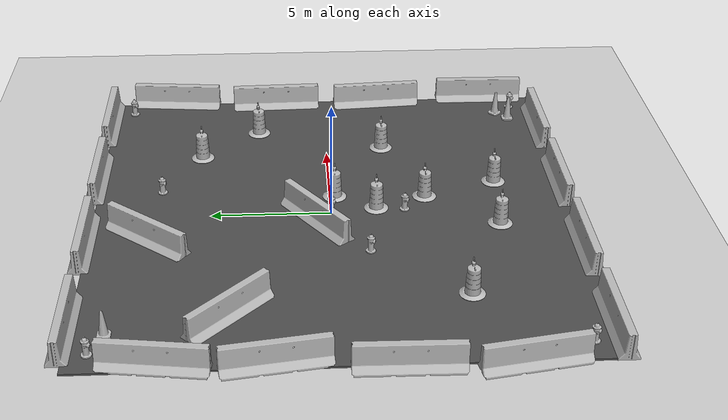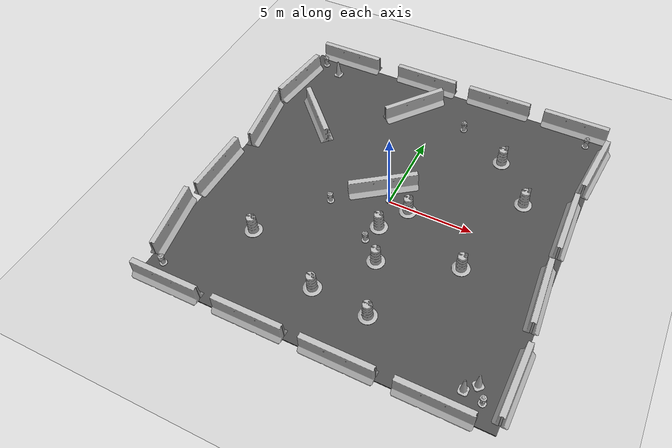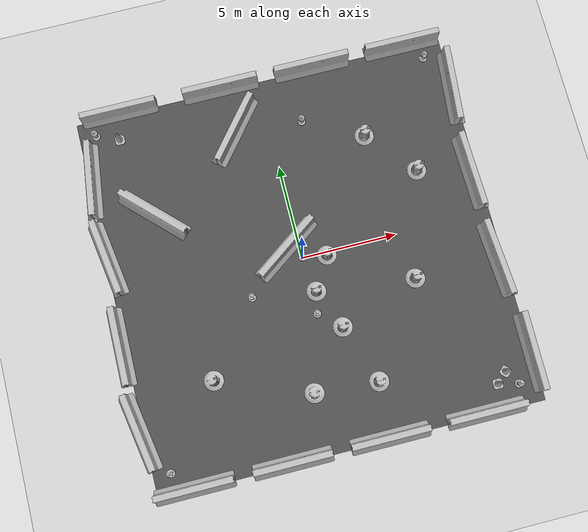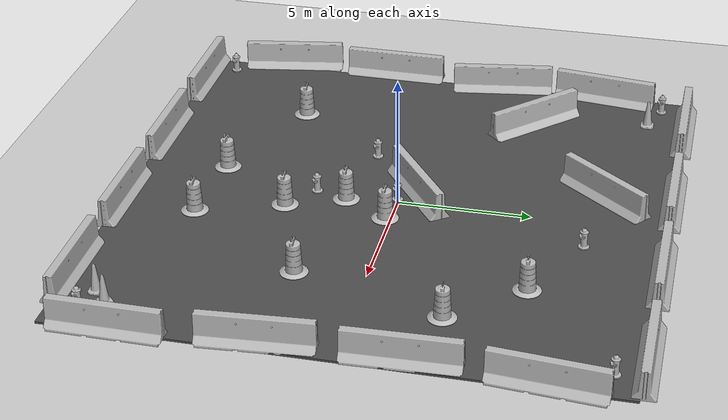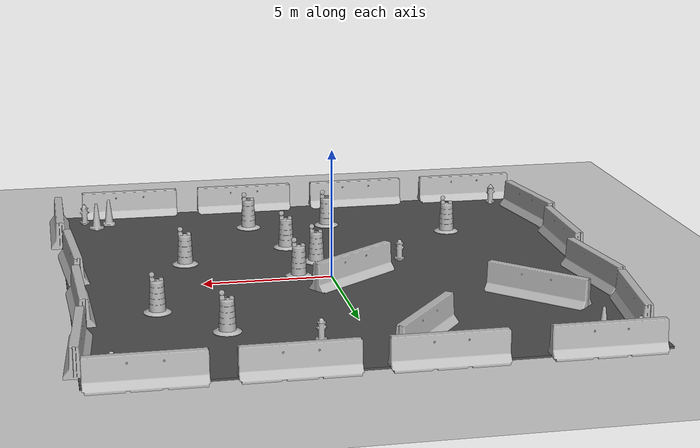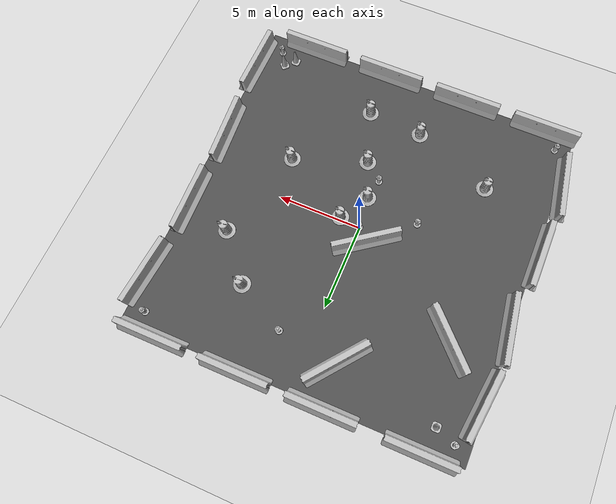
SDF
<sdf version="1.7">
 <world name="default">
  <light name="sun" type="directional">
   <pose>0 0 10 0 -0 0</pose>
   <diffuse>0.8 0.8 0.8 1</diffuse>
   <specular>0.2 0.2 0.2 1</specular>
   <attenuation>
    <range>1000</range>
    <constant>0.9</constant>
    <linear>0.01</linear>
    <quadratic>0.001</quadratic>
   </attenuation>
   <direction>-0.5 0.1 -0.9</direction>
   <spot><inner_angle>0</inner_angle><outer_angle>0</outer_angle><falloff>0</falloff></spot>
  </light>
  <model name="ground_plane">
   <static>1</static>
   <link name="link">
    <collision name="collision">
     <geometry><plane><normal>0 0 1</normal><size>100 100</size></plane></geometry>
     <surface><friction><ode><mu>100</mu><mu2>50</mu2></ode></friction></surface>
    </collision>
    <visual name="visual">
     <cast_shadows>0</cast_shadows>
     <geometry><plane><normal>0 0 1</normal><size>100 100</size></plane></geometry>
     <material>
      <script><uri>file://media/materials/scripts/gazebo.material</uri><name>Gazebo/Grey</name></script>
     </material>
    </visual>
    <velocity_decay><linear>0</linear><angular>0</angular></velocity_decay>
   </link>
  </model>
  <physics type="ode">
   <max_step_size>0.01</max_step_size>
   <real_time_factor>1</real_time_factor>
   <real_time_update_rate>100</real_time_update_rate>
  </physics>
  <scene><ambient>0.4 0.4 0.4 1</ambient><background>0.7 0.7 0.7 1</background><shadows>1</shadows></scene>
  <model name="jersey_barrier">
   <static>1</static>
   <link name="link">
    <visual name="visual">
     <geometry><mesh><uri>model://jersey_barrier/meshes/jersey_barrier.dae</uri></mesh></geometry>
    </visual>
    <collision name="upright">
     <pose>0 0 0.5715 0 -0 0</pose>
     <geometry><box><size>4.06542 0.3063 1.143</size></box></geometry>
    </collision>
    <collision name="base">
     <pose>0 0 0.032258 0 -0 0</pose>
     <geometry><box><size>4.06542 0.8107 0.064516</size></box></geometry>
    </collision>
    <collision name="base2">
     <pose>0 0 0.1 0 -0 0</pose>
     <geometry><box><size>4.06542 0.65 0.1</size></box></geometry>
    </collision>
    <collision name="base3">
     <pose>0 0 0.2 0 -0 0</pose>
     <geometry><box><size>4.06542 0.5 0.1</size></box></geometry>
    </collision>
    <collision name="left-angle">
     <pose>0 -0.224 0.2401 0.9 -0 0</pose>
     <geometry><box><size>4.06542 0.5 0.064516</size></box></geometry>
    </collision>
    <collision name="right-angle">
     <pose>0 0.224 0.2401 -0.9 0 0</pose>
     <geometry><box><size>4.06542 0.5 0.064516</size></box></geometry>
    </collision>
    <velocity_decay><linear>0</linear><angular>0</angular></velocity_decay>
   </link>
   <pose>-8 -10 0 0 -0 0</pose>
  </model>
  <model name="jersey_barrier_0">
   <static>1</static>
   <link name="link">
    <visual name="visual">
     <geometry><mesh><uri>model://jersey_barrier/meshes/jersey_barrier.dae</uri></mesh></geometry>
    </visual>
    <collision name="upright">
     <pose>0 0 0.5715 0 -0 0</pose>
     <geometry><box><size>4.06542 0.3063 1.143</size></box></geometry>
    </collision>
    <collision name="base">
     <pose>0 0 0.032258 0 -0 0</pose>
     <geometry><box><size>4.06542 0.8107 0.064516</size></box></geometry>
    </collision>
    <collision name="base2">
     <pose>0 0 0.1 0 -0 0</pose>
     <geometry><box><size>4.06542 0.65 0.1</size></box></geometry>
    </collision>
    <collision name="base3">
     <pose>0 0 0.2 0 -0 0</pose>
     <geometry><box><size>4.06542 0.5 0.1</size></box></geometry>
    </collision>
    <collision name="left-angle">
     <pose>0 -0.224 0.2401 0.9 -0 0</pose>
     <geometry><box><size>4.06542 0.5 0.064516</size></box></geometry>
    </collision>
    <collision name="right-angle">
     <pose>0 0.224 0.2401 -0.9 0 0</pose>
     <geometry><box><size>4.06542 0.5 0.064516</size></box></geometry>
    </collision>
    <velocity_decay><linear>0</linear><angular>0</angular></velocity_decay>
   </link>
   <pose>-3 -10 0 0 -0 0</pose>
  </model>
  <model name="jersey_barrier_1">
   <static>1</static>
   <link name="link">
    <visual name="visual">
     <geometry><mesh><uri>model://jersey_barrier/meshes/jersey_barrier.dae</uri></mesh></geometry>
    </visual>
    <collision name="upright">
     <pose>0 0 0.5715 0 -0 0</pose>
     <geometry><box><size>4.06542 0.3063 1.143</size></box></geometry>
    </collision>
    <collision name="base">
     <pose>0 0 0.032258 0 -0 0</pose>
     <geometry><box><size>4.06542 0.8107 0.064516</size></box></geometry>
    </collision>
    <collision name="base2">
     <pose>0 0 0.1 0 -0 0</pose>
     <geometry><box><size>4.06542 0.65 0.1</size></box></geometry>
    </collision>
    <collision name="base3">
     <pose>0 0 0.2 0 -0 0</pose>
     <geometry><box><size>4.06542 0.5 0.1</size></box></geometry>
    </collision>
    <collision name="left-angle">
     <pose>0 -0.224 0.2401 0.9 -0 0</pose>
     <geometry><box><size>4.06542 0.5 0.064516</size></box></geometry>
    </collision>
    <collision name="right-angle">
     <pose>0 0.224 0.2401 -0.9 0 0</pose>
     <geometry><box><size>4.06542 0.5 0.064516</size></box></geometry>
    </collision>
    <velocity_decay><linear>0</linear><angular>0</angular></velocity_decay>
   </link>
   <pose>2 -10 0 0 -0 0</pose>
  </model>
  <model name="jersey_barrier_2">
   <static>1</static>
   <link name="link">
    <visual name="visual">
     <geometry><mesh><uri>model://jersey_barrier/meshes/jersey_barrier.dae</uri></mesh></geometry>
    </visual>
    <collision name="upright">
     <pose>0 0 0.5715 0 -0 0</pose>
     <geometry><box><size>4.06542 0.3063 1.143</size></box></geometry>
    </collision>
    <collision name="base">
     <pose>0 0 0.032258 0 -0 0</pose>
     <geometry><box><size>4.06542 0.8107 0.064516</size></box></geometry>
    </collision>
    <collision name="base2">
     <pose>0 0 0.1 0 -0 0</pose>
     <geometry><box><size>4.06542 0.65 0.1</size></box></geometry>
    </collision>
    <collision name="base3">
     <pose>0 0 0.2 0 -0 0</pose>
     <geometry><box><size>4.06542 0.5 0.1</size></box></geometry>
    </collision>
    <collision name="left-angle">
     <pose>0 -0.224 0.2401 0.9 -0 0</pose>
     <geometry><box><size>4.06542 0.5 0.064516</size></box></geometry>
    </collision>
    <collision name="right-angle">
     <pose>0 0.224 0.2401 -0.9 0 0</pose>
     <geometry><box><size>4.06542 0.5 0.064516</size></box></geometry>
    </collision>
    <velocity_decay><linear>0</linear><angular>0</angular></velocity_decay>
   </link>
   <pose>7 -10 0 0 -0 0</pose>
  </model>
  <model name="jersey_barrier_3">
   <static>1</static>
   <link name="link">
    <visual name="visual">
     <geometry><mesh><uri>model://jersey_barrier/meshes/jersey_barrier.dae</uri></mesh></geometry>
    </visual>
    <collision name="upright">
     <pose>0 0 0.5715 0 -0 0</pose>
     <geometry><box><size>4.06542 0.3063 1.143</size></box></geometry>
    </collision>
    <collision name="base">
     <pose>0 0 0.032258 0 -0 0</pose>
     <geometry><box><size>4.06542 0.8107 0.064516</size></box></geometry>
    </collision>
    <collision name="base2">
     <pose>0 0 0.1 0 -0 0</pose>
     <geometry><box><size>4.06542 0.65 0.1</size></box></geometry>
    </collision>
    <collision name="base3">
     <pose>0 0 0.2 0 -0 0</pose>
     <geometry><box><size>4.06542 0.5 0.1</size></box></geometry>
    </collision>
    <collision name="left-angle">
     <pose>0 -0.224 0.2401 0.9 -0 0</pose>
     <geometry><box><size>4.06542 0.5 0.064516</size></box></geometry>
    </collision>
    <collision name="right-angle">
     <pose>0 0.224 0.2401 -0.9 0 0</pose>
     <geometry><box><size>4.06542 0.5 0.064516</size></box></geometry>
    </collision>
    <velocity_decay><linear>0</linear><angular>0</angular></velocity_decay>
   </link>
   <pose>-7.50675 10 0 0 -0 0</pose>
  </model>
  <model name="jersey_barrier_4">
   <static>1</static>
   <link name="link">
    <visual name="visual">
     <geometry><mesh><uri>model://jersey_barrier/meshes/jersey_barrier.dae</uri></mesh></geometry>
    </visual>
    <collision name="upright">
     <pose>0 0 0.5715 0 -0 0</pose>
     <geometry><box><size>4.06542 0.3063 1.143</size></box></geometry>
    </collision>
    <collision name="base">
     <pose>0 0 0.032258 0 -0 0</pose>
     <geometry><box><size>4.06542 0.8107 0.064516</size></box></geometry>
    </collision>
    <collision name="base2">
     <pose>0 0 0.1 0 -0 0</pose>
     <geometry><box><size>4.06542 0.65 0.1</size></box></geometry>
    </collision>
    <collision name="base3">
     <pose>0 0 0.2 0 -0 0</pose>
     <geometry><box><size>4.06542 0.5 0.1</size></box></geometry>
    </collision>
    <collision name="left-angle">
     <pose>0 -0.224 0.2401 0.9 -0 0</pose>
     <geometry><box><size>4.06542 0.5 0.064516</size></box></geometry>
    </collision>
    <collision name="right-angle">
     <pose>0 0.224 0.2401 -0.9 0 0</pose>
     <geometry><box><size>4.06542 0.5 0.064516</size></box></geometry>
    </collision>
    <velocity_decay><linear>0</linear><angular>0</angular></velocity_decay>
   </link>
   <pose>-2 10 0 0 -0 0</pose>
  </model>
  <model name="jersey_barrier_5">
   <static>1</static>
   <link name="link">
    <visual name="visual">
     <geometry><mesh><uri>model://jersey_barrier/meshes/jersey_barrier.dae</uri></mesh></geometry>
    </visual>
    <collision name="upright">
     <pose>0 0 0.5715 0 -0 0</pose>
     <geometry><box><size>4.06542 0.3063 1.143</size></box></geometry>
    </collision>
    <collision name="base">
     <pose>0 0 0.032258 0 -0 0</pose>
     <geometry><box><size>4.06542 0.8107 0.064516</size></box></geometry>
    </collision>
    <collision name="base2">
     <pose>0 0 0.1 0 -0 0</pose>
     <geometry><box><size>4.06542 0.65 0.1</size></box></geometry>
    </collision>
    <collision name="base3">
     <pose>0 0 0.2 0 -0 0</pose>
     <geometry><box><size>4.06542 0.5 0.1</size></box></geometry>
    </collision>
    <collision name="left-angle">
     <pose>0 -0.224 0.2401 0.9 -0 0</pose>
     <geometry><box><size>4.06542 0.5 0.064516</size></box></geometry>
    </collision>
    <collision name="right-angle">
     <pose>0 0.224 0.2401 -0.9 0 0</pose>
     <geometry><box><size>4.06542 0.5 0.064516</size></box></geometry>
    </collision>
    <velocity_decay><linear>0</linear><angular>0</angular></velocity_decay>
   </link>
   <pose>3 10 0 0 -0 0</pose>
  </model>
  <model name="jersey_barrier_6">
   <static>1</static>
   <link name="link">
    <visual name="visual">
     <geometry><mesh><uri>model://jersey_barrier/meshes/jersey_barrier.dae</uri></mesh></geometry>
    </visual>
    <collision name="upright">
     <pose>0 0 0.5715 0 -0 0</pose>
     <geometry><box><size>4.06542 0.3063 1.143</size></box></geometry>
    </collision>
    <collision name="base">
     <pose>0 0 0.032258 0 -0 0</pose>
     <geometry><box><size>4.06542 0.8107 0.064516</size></box></geometry>
    </collision>
    <collision name="base2">
     <pose>0 0 0.1 0 -0 0</pose>
     <geometry><box><size>4.06542 0.65 0.1</size></box></geometry>
    </collision>
    <collision name="base3">
     <pose>0 0 0.2 0 -0 0</pose>
     <geometry><box><size>4.06542 0.5 0.1</size></box></geometry>
    </collision>
    <collision name="left-angle">
     <pose>0 -0.224 0.2401 0.9 -0 0</pose>
     <geometry><box><size>4.06542 0.5 0.064516</size></box></geometry>
    </collision>
    <collision name="right-angle">
     <pose>0 0.224 0.2401 -0.9 0 0</pose>
     <geometry><box><size>4.06542 0.5 0.064516</size></box></geometry>
    </collision>
    <velocity_decay><linear>0</linear><angular>0</angular></velocity_decay>
   </link>
   <pose>8 10 0 0 -0 0</pose>
  </model>
  <model name="jersey_barrier_7">
   <static>1</static>
   <link name="link">
    <visual name="visual">
     <geometry><mesh><uri>model://jersey_barrier/meshes/jersey_barrier.dae</uri></mesh></geometry>
    </visual>
    <collision name="upright">
     <pose>0 0 0.5715 0 -0 0</pose>
     <geometry><box><size>4.06542 0.3063 1.143</size></box></geometry>
    </collision>
    <collision name="base">
     <pose>0 0 0.032258 0 -0 0</pose>
     <geometry><box><size>4.06542 0.8107 0.064516</size></box></geometry>
    </collision>
    <collision name="base2">
     <pose>0 0 0.1 0 -0 0</pose>
     <geometry><box><size>4.06542 0.65 0.1</size></box></geometry>
    </collision>
    <collision name="base3">
     <pose>0 0 0.2 0 -0 0</pose>
     <geometry><box><size>4.06542 0.5 0.1</size></box></geometry>
    </collision>
    <collision name="left-angle">
     <pose>0 -0.224 0.2401 0.9 -0 0</pose>
     <geometry><box><size>4.06542 0.5 0.064516</size></box></geometry>
    </collision>
    <collision name="right-angle">
     <pose>0 0.224 0.2401 -0.9 0 0</pose>
     <geometry><box><size>4.06542 0.5 0.064516</size></box></geometry>
    </collision>
    <velocity_decay><linear>0</linear><angular>0</angular></velocity_decay>
   </link>
   <pose>9.74902 -2.57759 0 0 -0 1.64</pose>
  </model>
  <model name="jersey_barrier_8">
   <static>1</static>
   <link name="link">
    <visual name="visual">
     <geometry><mesh><uri>model://jersey_barrier/meshes/jersey_barrier.dae</uri></mesh></geometry>
    </visual>
    <collision name="upright">
     <pose>0 0 0.5715 0 -0 0</pose>
     <geometry><box><size>4.06542 0.3063 1.143</size></box></geometry>
    </collision>
    <collision name="base">
     <pose>0 0 0.032258 0 -0 0</pose>
     <geometry><box><size>4.06542 0.8107 0.064516</size></box></geometry>
    </collision>
    <collision name="base2">
     <pose>0 0 0.1 0 -0 0</pose>
     <geometry><box><size>4.06542 0.65 0.1</size></box></geometry>
    </collision>
    <collision name="base3">
     <pose>0 0 0.2 0 -0 0</pose>
     <geometry><box><size>4.06542 0.5 0.1</size></box></geometry>
    </collision>
    <collision name="left-angle">
     <pose>0 -0.224 0.2401 0.9 -0 0</pose>
     <geometry><box><size>4.06542 0.5 0.064516</size></box></geometry>
    </collision>
    <collision name="right-angle">
     <pose>0 0.224 0.2401 -0.9 0 0</pose>
     <geometry><box><size>4.06542 0.5 0.064516</size></box></geometry>
    </collision>
    <velocity_decay><linear>0</linear><angular>0</angular></velocity_decay>
   </link>
   <pose>9.70141 2.24369 0 0 -0 1.6</pose>
  </model>
  <model name="jersey_barrier_9">
   <static>1</static>
   <link name="link">
    <visual name="visual">
     <geometry><mesh><uri>model://jersey_barrier/meshes/jersey_barrier.dae</uri></mesh></geometry>
    </visual>
    <collision name="upright">
     <pose>0 0 0.5715 0 -0 0</pose>
     <geometry><box><size>4.06542 0.3063 1.143</size></box></geometry>
    </collision>
    <collision name="base">
     <pose>0 0 0.032258 0 -0 0</pose>
     <geometry><box><size>4.06542 0.8107 0.064516</size></box></geometry>
    </collision>
    <collision name="base2">
     <pose>0 0 0.1 0 -0 0</pose>
     <geometry><box><size>4.06542 0.65 0.1</size></box></geometry>
    </collision>
    <collision name="base3">
     <pose>0 0 0.2 0 -0 0</pose>
     <geometry><box><size>4.06542 0.5 0.1</size></box></geometry>
    </collision>
    <collision name="left-angle">
     <pose>0 -0.224 0.2401 0.9 -0 0</pose>
     <geometry><box><size>4.06542 0.5 0.064516</size></box></geometry>
    </collision>
    <collision name="right-angle">
     <pose>0 0.224 0.2401 -0.9 0 0</pose>
     <geometry><box><size>4.06542 0.5 0.064516</size></box></geometry>
    </collision>
    <velocity_decay><linear>0</linear><angular>0</angular></velocity_decay>
   </link>
   <pose>-10.0607 -6.69856 0 0 0 -1.4</pose>
  </model>
  <model name="jersey_barrier_10">
   <static>1</static>
   <link name="link">
    <visual name="visual">
     <geometry><mesh><uri>model://jersey_barrier/meshes/jersey_barrier.dae</uri></mesh></geometry>
    </visual>
    <collision name="upright">
     <pose>0 0 0.5715 0 -0 0</pose>
     <geometry><box><size>4.06542 0.3063 1.143</size></box></geometry>
    </collision>
    <collision name="base">
     <pose>0 0 0.032258 0 -0 0</pose>
     <geometry><box><size>4.06542 0.8107 0.064516</size></box></geometry>
    </collision>
    <collision name="base2">
     <pose>0 0 0.1 0 -0 0</pose>
     <geometry><box><size>4.06542 0.65 0.1</size></box></geometry>
    </collision>
    <collision name="base3">
     <pose>0 0 0.2 0 -0 0</pose>
     <geometry><box><size>4.06542 0.5 0.1</size></box></geometry>
    </collision>
    <collision name="left-angle">
     <pose>0 -0.224 0.2401 0.9 -0 0</pose>
     <geometry><box><size>4.06542 0.5 0.064516</size></box></geometry>
    </collision>
    <collision name="right-angle">
     <pose>0 0.224 0.2401 -0.9 0 0</pose>
     <geometry><box><size>4.06542 0.5 0.064516</size></box></geometry>
    </collision>
    <velocity_decay><linear>0</linear><angular>0</angular></velocity_decay>
   </link>
   <pose>-10.0774 -2.27159 0 0 -0 1.56</pose>
  </model>
  <model name="jersey_barrier_11">
   <static>1</static>
   <link name="link">
    <visual name="visual">
     <geometry><mesh><uri>model://jersey_barrier/meshes/jersey_barrier.dae</uri></mesh></geometry>
    </visual>
    <collision name="upright">
     <pose>0 0 0.5715 0 -0 0</pose>
     <geometry><box><size>4.06542 0.3063 1.143</size></box></geometry>
    </collision>
    <collision name="base">
     <pose>0 0 0.032258 0 -0 0</pose>
     <geometry><box><size>4.06542 0.8107 0.064516</size></box></geometry>
    </collision>
    <collision name="base2">
     <pose>0 0 0.1 0 -0 0</pose>
     <geometry><box><size>4.06542 0.65 0.1</size></box></geometry>
    </collision>
    <collision name="base3">
     <pose>0 0 0.2 0 -0 0</pose>
     <geometry><box><size>4.06542 0.5 0.1</size></box></geometry>
    </collision>
    <collision name="left-angle">
     <pose>0 -0.224 0.2401 0.9 -0 0</pose>
     <geometry><box><size>4.06542 0.5 0.064516</size></box></geometry>
    </collision>
    <collision name="right-angle">
     <pose>0 0.224 0.2401 -0.9 0 0</pose>
     <geometry><box><size>4.06542 0.5 0.064516</size></box></geometry>
    </collision>
    <velocity_decay><linear>0</linear><angular>0</angular></velocity_decay>
   </link>
   <pose>-9.77013 2.34791 0 0 -0 1.72</pose>
  </model>
  <model name="jersey_barrier_12">
   <static>1</static>
   <link name="link">
    <visual name="visual">
     <geometry><mesh><uri>model://jersey_barrier/meshes/jersey_barrier.dae</uri></mesh></geometry>
    </visual>
    <collision name="upright">
     <pose>0 0 0.5715 0 -0 0</pose>
     <geometry><box><size>4.06542 0.3063 1.143</size></box></geometry>
    </collision>
    <collision name="base">
     <pose>0 0 0.032258 0 -0 0</pose>
     <geometry><box><size>4.06542 0.8107 0.064516</size></box></geometry>
    </collision>
    <collision name="base2">
     <pose>0 0 0.1 0 -0 0</pose>
     <geometry><box><size>4.06542 0.65 0.1</size></box></geometry>
    </collision>
    <collision name="base3">
     <pose>0 0 0.2 0 -0 0</pose>
     <geometry><box><size>4.06542 0.5 0.1</size></box></geometry>
    </collision>
    <collision name="left-angle">
     <pose>0 -0.224 0.2401 0.9 -0 0</pose>
     <geometry><box><size>4.06542 0.5 0.064516</size></box></geometry>
    </collision>
    <collision name="right-angle">
     <pose>0 0.224 0.2401 -0.9 0 0</pose>
     <geometry><box><size>4.06542 0.5 0.064516</size></box></geometry>
    </collision>
    <velocity_decay><linear>0</linear><angular>0</angular></velocity_decay>
   </link>
   <pose>10.0879 -7.62159 0 0 -0 1.56</pose>
  </model>
  <model name="jersey_barrier_13">
   <static>1</static>
   <link name="link">
    <visual name="visual">
     <geometry><mesh><uri>model://jersey_barrier/meshes/jersey_barrier.dae</uri></mesh></geometry>
    </visual>
    <collision name="upright">
     <pose>0 0 0.5715 0 -0 0</pose>
     <geometry><box><size>4.06542 0.3063 1.143</size></box></geometry>
    </collision>
    <collision name="base">
     <pose>0 0 0.032258 0 -0 0</pose>
     <geometry><box><size>4.06542 0.8107 0.064516</size></box></geometry>
    </collision>
    <collision name="base2">
     <pose>0 0 0.1 0 -0 0</pose>
     <geometry><box><size>4.06542 0.65 0.1</size></box></geometry>
    </collision>
    <collision name="base3">
     <pose>0 0 0.2 0 -0 0</pose>
     <geometry><box><size>4.06542 0.5 0.1</size></box></geometry>
    </collision>
    <collision name="left-angle">
     <pose>0 -0.224 0.2401 0.9 -0 0</pose>
     <geometry><box><size>4.06542 0.5 0.064516</size></box></geometry>
    </collision>
    <collision name="right-angle">
     <pose>0 0.224 0.2401 -0.9 0 0</pose>
     <geometry><box><size>4.06542 0.5 0.064516</size></box></geometry>
    </collision>
    <velocity_decay><linear>0</linear><angular>0</angular></velocity_decay>
   </link>
   <pose>10 7 0 0 -0 1.48</pose>
  </model>
  <model name="jersey_barrier_14">
   <static>1</static>
   <link name="link">
    <visual name="visual">
     <geometry><mesh><uri>model://jersey_barrier/meshes/jersey_barrier.dae</uri></mesh></geometry>
    </visual>
    <collision name="upright">
     <pose>0 0 0.5715 0 -0 0</pose>
     <geometry><box><size>4.06542 0.3063 1.143</size></box></geometry>
    </collision>
    <collision name="base">
     <pose>0 0 0.032258 0 -0 0</pose>
     <geometry><box><size>4.06542 0.8107 0.064516</size></box></geometry>
    </collision>
    <collision name="base2">
     <pose>0 0 0.1 0 -0 0</pose>
     <geometry><box><size>4.06542 0.65 0.1</size></box></geometry>
    </collision>
    <collision name="base3">
     <pose>0 0 0.2 0 -0 0</pose>
     <geometry><box><size>4.06542 0.5 0.1</size></box></geometry>
    </collision>
    <collision name="left-angle">
     <pose>0 -0.224 0.2401 0.9 -0 0</pose>
     <geometry><box><size>4.06542 0.5 0.064516</size></box></geometry>
    </collision>
    <collision name="right-angle">
     <pose>0 0.224 0.2401 -0.9 0 0</pose>
     <geometry><box><size>4.06542 0.5 0.064516</size></box></geometry>
    </collision>
    <velocity_decay><linear>0</linear><angular>0</angular></velocity_decay>
   </link>
   <pose>-9.70256 6.62049 0 0 -0 1.44</pose>
  </model>
  <model name="fire_hydrant">
   <static>1</static>
   <link name="link">
    <collision name="collision">
     <geometry><mesh><uri>model://fire_hydrant/meshes/fire_hydrant.dae</uri></mesh></geometry>
    </collision>
    <visual name="visual">
     <geometry><mesh><uri>model://fire_hydrant/meshes/fire_hydrant.dae</uri></mesh></geometry>
    </visual>
    <velocity_decay><linear>0</linear><angular>0</angular></velocity_decay>
   </link>
   <pose>0.01701 -3.0684 0 0 -0 0</pose>
  </model>
  <model name="fire_hydrant_0">
   <static>1</static>
   <link name="link">
    <collision name="collision">
     <geometry><mesh><uri>model://fire_hydrant/meshes/fire_hydrant.dae</uri></mesh></geometry>
    </collision>
    <visual name="visual">
     <geometry><mesh><uri>model://fire_hydrant/meshes/fire_hydrant.dae</uri></mesh></geometry>
    </visual>
    <velocity_decay><linear>0</linear><angular>0</angular></velocity_decay>
   </link>
   <pose>1.76688 7.1352 0 0 -0 0</pose>
  </model>
  <model name="fire_hydrant_1">
   <static>1</static>
   <link name="link">
    <collision name="collision">
     <geometry><mesh><uri>model://fire_hydrant/meshes/fire_hydrant.dae</uri></mesh></geometry>
    </collision>
    <visual name="visual">
     <geometry><mesh><uri>model://fire_hydrant/meshes/fire_hydrant.dae</uri></mesh></geometry>
    </visual>
    <velocity_decay><linear>0</linear><angular>0</angular></velocity_decay>
   </link>
   <pose>-3.01583 -1.43416 0 0 -0 0</pose>
  </model>
  <model name="jersey_barrier_15">
   <static>1</static>
   <link name="link">
    <visual name="visual">
     <geometry><mesh><uri>model://jersey_barrier/meshes/jersey_barrier.dae</uri></mesh></geometry>
    </visual>
    <collision name="upright">
     <pose>0 0 0.5715 0 -0 0</pose>
     <geometry><box><size>4.06542 0.3063 1.143</size></box></geometry>
    </collision>
    <collision name="base">
     <pose>0 0 0.032258 0 -0 0</pose>
     <geometry><box><size>4.06542 0.8107 0.064516</size></box></geometry>
    </collision>
    <collision name="base2">
     <pose>0 0 0.1 0 -0 0</pose>
     <geometry><box><size>4.06542 0.65 0.1</size></box></geometry>
    </collision>
    <collision name="base3">
     <pose>0 0 0.2 0 -0 0</pose>
     <geometry><box><size>4.06542 0.5 0.1</size></box></geometry>
    </collision>
    <collision name="left-angle">
     <pose>0 -0.224 0.2401 0.9 -0 0</pose>
     <geometry><box><size>4.06542 0.5 0.064516</size></box></geometry>
    </collision>
    <collision name="right-angle">
     <pose>0 0.224 0.2401 -0.9 0 0</pose>
     <geometry><box><size>4.06542 0.5 0.064516</size></box></geometry>
    </collision>
    <velocity_decay><linear>0</linear><angular>0</angular></velocity_decay>
   </link>
   <pose>-1.79413 7.48745 0 0 -0 0.891596</pose>
  </model>
  <model name="Construction Cone">
   <link name="link">
    <collision name="collision">
     <geometry>
      <mesh><scale>10 10 10</scale><uri>model://construction_cone/meshes/construction_cone.dae</uri></mesh>
     </geometry>
    </collision>
    <visual name="visual">
     <geometry>
      <mesh><scale>10 10 10</scale><uri>model://construction_cone/meshes/construction_cone.dae</uri></mesh>
     </geometry>
    </visual>
    <velocity_decay><linear>0</linear><angular>0</angular></velocity_decay>
    <inertial>
     <inertia><ixx>1</ixx><ixy>0</ixy><ixz>0</ixz><iyy>1</iyy><iyz>0</iyz><izz>1</izz></inertia>
     <mass>1</mass>
    </inertial>
   </link>
   <pose>7.98363 -8.75621 0.04902 1e-06 -0 8e-06</pose>
   <static>0</static>
  </model>
  <model name="Construction Barrel">
   <link name="link">
    <inertial>
     <pose>0 0 0.4 0 -0 0</pose>
     <mass>500</mass>
     <inertia><ixx>51.2096</ixx><iyy>51.2096</iyy><izz>25</izz><ixy>0</ixy><ixz>0</ixz><iyz>0</iyz></inertia>
    </inertial>
    <collision name="collision">
     <geometry><mesh><uri>model://construction_barrel/meshes/construction_barrel.dae</uri></mesh></geometry>
    </collision>
    <visual name="visual">
     <geometry><mesh><uri>model://construction_barrel/meshes/construction_barrel.dae</uri></mesh></geometry>
    </visual>
    <velocity_decay><linear>0</linear><angular>0</angular></velocity_decay>
   </link>
   <pose>0.263146 -1.89911 0.049899 0.000427 -2e-05 -9.3e-05</pose>
   <static>0</static>
  </model>
  <model name="Construction Cone_0">
   <link name="link">
    <collision name="collision">
     <geometry>
      <mesh><scale>10 10 10</scale><uri>model://construction_cone/meshes/construction_cone.dae</uri></mesh>
     </geometry>
    </collision>
    <visual name="visual">
     <geometry>
      <mesh><scale>10 10 10</scale><uri>model://construction_cone/meshes/construction_cone.dae</uri></mesh>
     </geometry>
    </visual>
    <velocity_decay><linear>0</linear><angular>0</angular></velocity_decay>
    <inertial>
     <inertia><ixx>1</ixx><ixy>0</ixy><ixz>0</ixz><iyy>1</iyy><iyz>0</iyz><izz>1</izz></inertia>
     <mass>1</mass>
    </inertial>
   </link>
   <pose>8.53266 -8.24627 0.04902 1e-06 -0 2.34444</pose>
   <static>0</static>
  </model>
  <model name="Construction Barrel_0">
   <link name="link">
    <inertial>
     <pose>0 0 0.4 0 -0 0</pose>
     <mass>500</mass>
     <inertia><ixx>51.2096</ixx><iyy>51.2096</iyy><izz>25</izz><ixy>0</ixy><ixz>0</ixz><iyz>0</iyz></inertia>
    </inertial>
    <collision name="collision">
     <geometry><mesh><uri>model://construction_barrel/meshes/construction_barrel.dae</uri></mesh></geometry>
    </collision>
    <visual name="visual">
     <geometry><mesh><uri>model://construction_barrel/meshes/construction_barrel.dae</uri></mesh></geometry>
    </visual>
    <velocity_decay><linear>0</linear><angular>0</angular></velocity_decay>
   </link>
   <pose>1.1164 -4.02288 0.04991 0.000395 -2.6e-05 -0.000456</pose>
   <static>0</static>
  </model>
  <model name="asphalt_plane">
   <static>1</static>
   <link name="link">
    <collision name="collision"><geometry><box><size>20 20 0.1</size></box></geometry></collision>
    <visual name="visual">
     <cast_shadows>0</cast_shadows>
     <geometry><box><size>20 20 0.1</size></box></geometry>
     <material>
      <script>
       <uri>model://asphalt_plane/materials/scripts</uri>
       <uri>model://asphalt_plane/materials/textures</uri>
       <name>vrc/asphalt</name>
      </script>
     </material>
    </visual>
    <velocity_decay><linear>0</linear><angular>0</angular></velocity_decay>
   </link>
   <pose>0.09124 -0.110709 0 0 -0 0</pose>
  </model>
  <model name="Construction Barrel_1">
   <link name="link">
    <inertial>
     <pose>0 0 0.4 0 -0 0</pose>
     <mass>500</mass>
     <inertia><ixx>51.2096</ixx><iyy>51.2096</iyy><izz>25</izz><ixy>0</ixy><ixz>0</ixz><iyz>0</iyz></inertia>
    </inertial>
    <collision name="collision">
     <geometry><mesh><uri>model://construction_barrel/meshes/construction_barrel.dae</uri></mesh></geometry>
    </collision>
    <visual name="visual">
     <geometry><mesh><uri>model://construction_barrel/meshes/construction_barrel.dae</uri></mesh></geometry>
    </visual>
    <velocity_decay><linear>0</linear><angular>0</angular></velocity_decay>
   </link>
   <pose>5.39373 -2.49604 0.049884 -0.000115 -0.000452 -0.009306</pose>
   <static>0</static>
  </model>
  <model name="Construction Barrel_2">
   <link name="link">
    <inertial>
     <pose>0 0 0.4 0 -0 0</pose>
     <mass>500</mass>
     <inertia><ixx>51.2096</ixx><iyy>51.2096</iyy><izz>25</izz><ixy>0</ixy><ixz>0</ixz><iyz>0</iyz></inertia>
    </inertial>
    <collision name="collision">
     <geometry><mesh><uri>model://construction_barrel/meshes/construction_barrel.dae</uri></mesh></geometry>
    </collision>
    <visual name="visual">
     <geometry><mesh><uri>model://construction_barrel/meshes/construction_barrel.dae</uri></mesh></geometry>
    </visual>
    <velocity_decay><linear>0</linear><angular>0</angular></velocity_decay>
   </link>
   <pose>4.79547 5.56978 0.049882 0.000474 -7e-06 0.064593</pose>
   <static>0</static>
  </model>
  <model name="Construction Barrel_3">
   <link name="link">
    <inertial>
     <pose>0 0 0.4 0 -0 0</pose>
     <mass>500</mass>
     <inertia><ixx>51.2096</ixx><iyy>51.2096</iyy><izz>25</izz><ixy>0</ixy><ixz>0</ixz><iyz>0</iyz></inertia>
    </inertial>
    <collision name="collision">
     <geometry><mesh><uri>model://construction_barrel/meshes/construction_barrel.dae</uri></mesh></geometry>
    </collision>
    <visual name="visual">
     <geometry><mesh><uri>model://construction_barrel/meshes/construction_barrel.dae</uri></mesh></geometry>
    </visual>
    <velocity_decay><linear>0</linear><angular>0</angular></velocity_decay>
   </link>
   <pose>-1.11982 -6.91986 0.049898 0.00043 -1.9e-05 -0.120974</pose>
   <static>0</static>
  </model>
  <model name="Construction Barrel_4">
   <link name="link">
    <inertial>
     <pose>0 0 0.4 0 -0 0</pose>
     <mass>500</mass>
     <inertia><ixx>51.2096</ixx><iyy>51.2096</iyy><izz>25</izz><ixy>0</ixy><ixz>0</ixz><iyz>0</iyz></inertia>
    </inertial>
    <collision name="collision">
     <geometry><mesh><uri>model://construction_barrel/meshes/construction_barrel.dae</uri></mesh></geometry>
    </collision>
    <visual name="visual">
     <geometry><mesh><uri>model://construction_barrel/meshes/construction_barrel.dae</uri></mesh></geometry>
    </visual>
    <velocity_decay><linear>0</linear><angular>0</angular></velocity_decay>
   </link>
   <pose>1.26257 -0.193819 0.049906 -8.6e-05 -0.000393 -0.049361</pose>
   <static>0</static>
  </model>
  <model name="Construction Barrel_5">
   <link name="link">
    <inertial>
     <pose>0 0 0.4 0 -0 0</pose>
     <mass>500</mass>
     <inertia><ixx>51.2096</ixx><iyy>51.2096</iyy><izz>25</izz><ixy>0</ixy><ixz>0</ixz><iyz>0</iyz></inertia>
    </inertial>
    <collision name="collision">
     <geometry><mesh><uri>model://construction_barrel/meshes/construction_barrel.dae</uri></mesh></geometry>
    </collision>
    <visual name="visual">
     <geometry><mesh><uri>model://construction_barrel/meshes/construction_barrel.dae</uri></mesh></geometry>
    </visual>
    <velocity_decay><linear>0</linear><angular>0</angular></velocity_decay>
   </link>
   <pose>6.99362 3.05271 0.049888 1e-06 -0.000441 0.146267</pose>
   <static>0</static>
  </model>
  <model name="Construction Barrel_6">
   <link name="link">
    <inertial>
     <pose>0 0 0.4 0 -0 0</pose>
     <mass>500</mass>
     <inertia><ixx>51.2096</ixx><iyy>51.2096</iyy><izz>25</izz><ixy>0</ixy><ixz>0</ixz><iyz>0</iyz></inertia>
    </inertial>
    <collision name="collision">
     <geometry><mesh><uri>model://construction_barrel/meshes/construction_barrel.dae</uri></mesh></geometry>
    </collision>
    <visual name="visual">
     <geometry><mesh><uri>model://construction_barrel/meshes/construction_barrel.dae</uri></mesh></geometry>
    </visual>
    <velocity_decay><linear>0</linear><angular>0</angular></velocity_decay>
   </link>
   <pose>-5.9019 -5.06793 0.049917 -0.000164 -0.000339 0.034968</pose>
   <static>0</static>
  </model>
  <model name="Construction Barrel_7">
   <link name="link">
    <inertial>
     <pose>0 0 0.4 0 -0 0</pose>
     <mass>500</mass>
     <inertia><ixx>51.2096</ixx><iyy>51.2096</iyy><izz>25</izz><ixy>0</ixy><ixz>0</ixz><iyz>0</iyz></inertia>
    </inertial>
    <collision name="collision">
     <geometry><mesh><uri>model://construction_barrel/meshes/construction_barrel.dae</uri></mesh></geometry>
    </collision>
    <visual name="visual">
     <geometry><mesh><uri>model://construction_barrel/meshes/construction_barrel.dae</uri></mesh></geometry>
    </visual>
    <velocity_decay><linear>0</linear><angular>0</angular></velocity_decay>
   </link>
   <pose>2.2049 -7.15421 0.049881 -0.000234 -0.000415 0.003119</pose>
   <static>0</static>
  </model>
  <model name="Construction Cone_1">
   <link name="link">
    <collision name="collision">
     <geometry>
      <mesh><scale>10 10 10</scale><uri>model://construction_cone/meshes/construction_cone.dae</uri></mesh>
     </geometry>
    </collision>
    <visual name="visual">
     <geometry>
      <mesh><scale>10 10 10</scale><uri>model://construction_cone/meshes/construction_cone.dae</uri></mesh>
     </geometry>
    </visual>
    <velocity_decay><linear>0</linear><angular>0</angular></velocity_decay>
    <inertial>
     <inertia><ixx>1</ixx><ixy>0</ixy><ixz>0</ixz><iyy>1</iyy><iyz>0</iyz><izz>1</izz></inertia>
     <mass>1</mass>
    </inertial>
   </link>
   <pose>-7.83833 8.53087 0.04902 1e-06 -0 8e-06</pose>
   <static>0</static>
  </model>
  <gravity>0 0 -9.8</gravity>
  <magnetic_field>6e-06 2.3e-05 -4.2e-05</magnetic_field>
  <atmosphere type="adiabatic"/>
  <spherical_coordinates>
   <surface_model>EARTH_WGS84</surface_model>
   <latitude_deg>0</latitude_deg>
   <longitude_deg>0</longitude_deg>
   <elevation>0</elevation>
   <heading_deg>0</heading_deg>
  </spherical_coordinates>
  <model name="jersey_barrier_15_clone">
   <static>1</static>
   <link name="link">
    <visual name="visual">
     <geometry><mesh><uri>model://jersey_barrier/meshes/jersey_barrier.dae</uri></mesh></geometry>
    </visual>
    <collision name="upright">
     <pose>0 0 0.5715 0 -0 0</pose>
     <geometry><box><size>4.06542 0.3063 1.143</size></box></geometry>
    </collision>
    <collision name="base">
     <pose>0 0 0.032258 0 -0 0</pose>
     <geometry><box><size>4.06542 0.8107 0.064516</size></box></geometry>
    </collision>
    <collision name="base2">
     <pose>0 0 0.1 0 -0 0</pose>
     <geometry><box><size>4.06542 0.65 0.1</size></box></geometry>
    </collision>
    <collision name="base3">
     <pose>0 0 0.2 0 -0 0</pose>
     <geometry><box><size>4.06542 0.5 0.1</size></box></geometry>
    </collision>
    <collision name="left-angle">
     <pose>0 -0.224 0.2401 0.9 -0 0</pose>
     <geometry><box><size>4.06542 0.5 0.064516</size></box></geometry>
    </collision>
    <collision name="right-angle">
     <pose>0 0.224 0.2401 -0.9 0 0</pose>
     <geometry><box><size>4.06542 0.5 0.064516</size></box></geometry>
    </collision>
    <velocity_decay><linear>0</linear><angular>0</angular></velocity_decay>
   </link>
   <pose>-6.93443 4.09077 0 0 -0 2.36</pose>
  </model>
  <model name="jersey_barrier_15_clone_0">
   <static>1</static>
   <link name="link">
    <visual name="visual">
     <geometry><mesh><uri>model://jersey_barrier/meshes/jersey_barrier.dae</uri></mesh></geometry>
    </visual>
    <collision name="upright">
     <pose>0 0 0.5715 0 -0 0</pose>
     <geometry><box><size>4.06542 0.3063 1.143</size></box></geometry>
    </collision>
    <collision name="base">
     <pose>0 0 0.032258 0 -0 0</pose>
     <geometry><box><size>4.06542 0.8107 0.064516</size></box></geometry>
    </collision>
    <collision name="base2">
     <pose>0 0 0.1 0 -0 0</pose>
     <geometry><box><size>4.06542 0.65 0.1</size></box></geometry>
    </collision>
    <collision name="base3">
     <pose>0 0 0.2 0 -0 0</pose>
     <geometry><box><size>4.06542 0.5 0.1</size></box></geometry>
    </collision>
    <collision name="left-angle">
     <pose>0 -0.224 0.2401 0.9 -0 0</pose>
     <geometry><box><size>4.06542 0.5 0.064516</size></box></geometry>
    </collision>
    <collision name="right-angle">
     <pose>0 0.224 0.2401 -0.9 0 0</pose>
     <geometry><box><size>4.06542 0.5 0.064516</size></box></geometry>
    </collision>
    <velocity_decay><linear>0</linear><angular>0</angular></velocity_decay>
   </link>
   <pose>-0.684469 0.626157 0 0 -0 0.621257</pose>
  </model>
  <model name="fire_hydrant_clone">
   <static>1</static>
   <link name="link">
    <collision name="collision">
     <geometry><mesh><uri>model://fire_hydrant/meshes/fire_hydrant.dae</uri></mesh></geometry>
    </collision>
    <visual name="visual">
     <geometry><mesh><uri>model://fire_hydrant/meshes/fire_hydrant.dae</uri></mesh></geometry>
    </visual>
    <velocity_decay><linear>0</linear><angular>0</angular></velocity_decay>
   </link>
  </model>
  <plugin name="gazebo_occupancy_map" filename="libgazebo_2Dmap_plugin.so">
   <map_resolution>0.05</map_resolution>
   <map_height>0.3</map_height>
   <map_size_x>30</map_size_x>
   <map_size_y>30</map_size_y>
   <init_robot_x>13</init_robot_x>
   <init_robot_y>13</init_robot_y>
  </plugin>
  <model name="fire_hydrant_0_clone">
   <static>1</static>
   <link name="link">
    <collision name="collision">
     <geometry><mesh><uri>model://fire_hydrant/meshes/fire_hydrant.dae</uri></mesh></geometry>
    </collision>
    <visual name="visual">
     <geometry><mesh><uri>model://fire_hydrant/meshes/fire_hydrant.dae</uri></mesh></geometry>
    </visual>
    <velocity_decay><linear>0</linear><angular>0</angular></velocity_decay>
   </link>
   <pose>9 9 0 0 -0 0</pose>
  </model>
  <model name="fire_hydrant_0_clone_0">
   <static>1</static>
   <link name="link">
    <collision name="collision">
     <geometry><mesh><uri>model://fire_hydrant/meshes/fire_hydrant.dae</uri></mesh></geometry>
    </collision>
    <visual name="visual">
     <geometry><mesh><uri>model://fire_hydrant/meshes/fire_hydrant.dae</uri></mesh></geometry>
    </visual>
    <velocity_decay><linear>0</linear><angular>0</angular></velocity_decay>
   </link>
   <pose>9 -9 0 0 -0 0</pose>
  </model>
  <model name="fire_hydrant_0_clone_1">
   <static>1</static>
   <link name="link">
    <collision name="collision">
     <geometry><mesh><uri>model://fire_hydrant/meshes/fire_hydrant.dae</uri></mesh></geometry>
    </collision>
    <visual name="visual">
     <geometry><mesh><uri>model://fire_hydrant/meshes/fire_hydrant.dae</uri></mesh></geometry>
    </visual>
    <velocity_decay><linear>0</linear><angular>0</angular></velocity_decay>
   </link>
   <pose>-9 -9 0 0 -0 0</pose>
  </model>
  <model name="fire_hydrant_0_clone_2">
   <static>1</static>
   <link name="link">
    <collision name="collision">
     <geometry><mesh><uri>model://fire_hydrant/meshes/fire_hydrant.dae</uri></mesh></geometry>
    </collision>
    <visual name="visual">
     <geometry><mesh><uri>model://fire_hydrant/meshes/fire_hydrant.dae</uri></mesh></geometry>
    </visual>
    <velocity_decay><linear>0</linear><angular>0</angular></velocity_decay>
   </link>
   <pose>-9 9 0 0 -0 0</pose>
  </model>
 </world>
</sdf>
